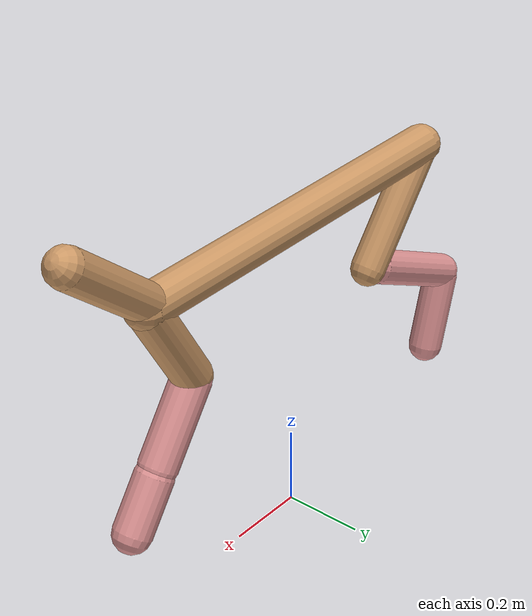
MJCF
<mujoco model="cheetah">
  <compiler angle="radian" coordinate="local" inertiafromgeom="true" settotalmass="14" />
  <default>
    <joint armature=".1" damping=".01" limited="true" solimplimit="0 .8 .03" solreflimit=".02 1" stiffness="8" />
    <geom conaffinity="0" condim="3" contype="1" friction="0.8 .1 .1" rgba="0.8 0.6 .4 1" solimp="0.0 0.8 0.01" solref="0.02 1" />
    <motor ctrllimited="true" ctrlrange="-1 1" />
  </default>
  <size nstack="300000" nuser_geom="1" />
  <option gravity="0 0 -9.81" timestep="0.01" />
  <worldbody>
    <body name="torso" pos="0.0 0.0 0.7936905496539121">
      <joint armature="0" axis="1 0 0" damping="0" limited="false" name="ignorex" pos="0 0 0" stiffness="0" type="slide" />
      <joint armature="0" axis="0 0 1" damping="0" limited="false" name="ignorez" pos="0 0 0" stiffness="0" type="slide" />
      <joint armature="0" axis="0 1 0" damping="0" limited="false" name="ignorey" pos="0 0 0" stiffness="0" type="hinge" />
      <geom fromto="-0.5 0.0 0.0 0.4881085910931925 0.0 0.0" name="torso" size="0.04954365964747931" type="capsule" />
      <geom axisangle="0 1 0 .87" name="head" pos="0.5881085910931925 0.0 0.1" size="0.0468488382301968 0.15" type="capsule" />

      <body name="bthigh" pos="-.5 0 0">
        <joint axis="0 1 0" damping="6" name="bthigh" pos="0 0 0" range="-.52 1.05" stiffness="240" type="hinge" />
        <geom axisangle="0 1 0 -3.8" name="bthigh" pos="0.10701949132670961 0.0 -0.1391253387247225" size="0.04412794859294213 0.15651282177950612" type="capsule" />
        <body name="bshin" pos="0.17403898265341922 0.0 -0.268250677449445">
          <joint axis="0 1 0" damping="4.5" name="bshin" pos="0 0 0" range="-.785 .785" stiffness="180" type="hinge" />
          <geom axisangle="0 1 0 -2.03" name="bshin" pos="-0.15065246294282036 0.0 -0.07532623147141018" rgba="0.9 0.6 0.6 1" size="0.04412794859294213 0.16190981563397186" type="capsule" />
          <body name="bfoot" pos="-0.30130492588564073 0.0 -0.15065246294282036">
            <joint axis="0 1 0" damping="3" name="bfoot" pos="0 0 0" range="-.4 .785" stiffness="120" type="hinge" />
            <geom axisangle="0 1 0 -.27" name="bfoot" pos="0.03220523368659815 0.0 -0.10413025558666736" rgba="0.9 0.6 0.6 1" size="0.04412794859294213 0.10146348446395571" type="capsule" />
            <inertial mass="10" />
          </body>
        </body>
      </body>
      <body name="fthigh" pos="0.4881085910931925 0.0 0.0">
        <joint axis="0 1 0" damping="4.5" name="fthigh" pos="0 0 0" range="-1.5 0.8" stiffness="180" type="hinge" />
        <geom axisangle="0 1 0 .52" name="fthigh" pos="-0.07079172146688247 0.0 -0.12135723680036993" size="0.04790166165436977 0.13457127801912996" type="capsule" />
        <body name="fshin" pos="-0.14158344293376493 0.0 -0.24271447360073986">
          <joint axis="0 1 0" damping="3" name="fshin" pos="0 0 0" range="-1.2 1.1" stiffness="120" type="hinge" />
          <geom axisangle="0 1 0 -.6" name="fshin" pos="0.06573320792776217 0.0 -0.09101521097690148" rgba="0.9 0.6 0.6 1" size="0.04790166165436977 0.10725229676712612" type="capsule" />
          <body name="ffoot" pos="0.13146641585552435 0.0 -0.18203042195380295">
            <joint axis="0 1 0" damping="1.5" name="ffoot" pos="0 0 0" range="-3.1 -0.3" stiffness="60" type="hinge" />
            <geom axisangle="0 1 0 -.6" name="ffoot" pos="0.045447200272057134 0.0 -0.07069564486764444" rgba="0.9 0.6 0.6 1" size="0.04790166165436977 0.07082698843112104" type="capsule" />
            <inertial mass="10" />
          </body>
        </body>
      </body>
    </body>
  </worldbody>
  <actuator>
    <motor gear="120" joint="bthigh" name="bthigh" />
    <motor gear="90" joint="bshin" name="bshin" />
    <motor gear="60" joint="bfoot" name="bfoot" />
    <motor gear="120" joint="fthigh" name="fthigh" />
    <motor gear="60" joint="fshin" name="fshin" />
    <motor gear="30" joint="ffoot" name="ffoot" />
  </actuator>
</mujoco>
